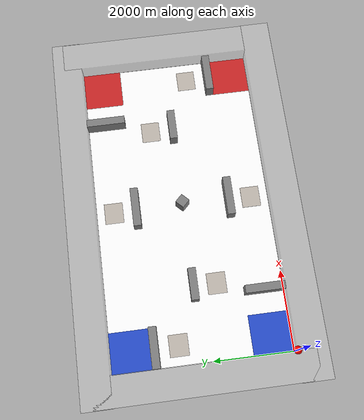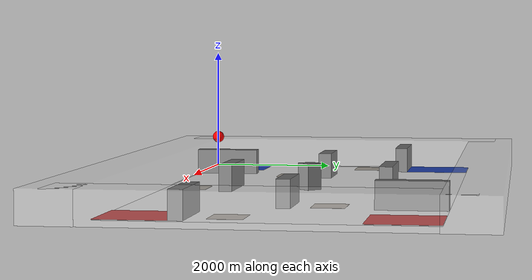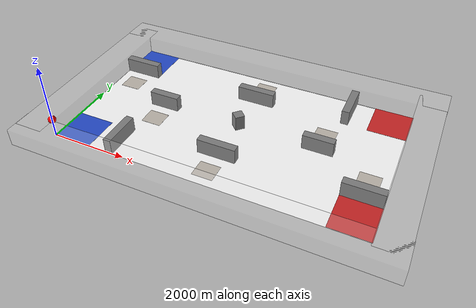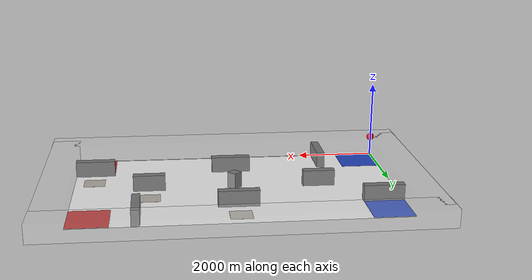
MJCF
<?xml version="1.0" encoding="utf-8"?>
<mujoco>
    <asset>
        <texture name="rm_red_marker_texture" file="rm_red_marker.png" type="2d"/>
        <texture name="rm_blue_marker_texture" file="rm_blue_marker.png" type="2d"/>
        <texture name="rm_buff_marker_texture" file="rm_buff_marker.png" type="2d"/>
        <material name="rm_red_marker" texture="rm_red_marker_texture"/>
        <material name="rm_blue_marker" texture="rm_blue_marker_texture"/>
        <material name="rm_buff_marker" texture="rm_buff_marker_texture"/>
    </asset>
	<worldbody>
            <body name="competition_area" pos="4040 2240 0">
                <geom name="floor" type="plane" rgba="1 1 1 1" size="4040 2240 100"/>

                <site name="blue_marker1" type="box" size="500 500 1" pos="-3540 -1740 0" euler="0 0 270" material="rm_blue_marker"/>
                <site name="blue_marker2" type="box" size="500 500 1" pos="-3540 1740 0" euler="0 0 270" material="rm_blue_marker"/>
                <site name="red_marker1" type="box" size="500 500 1" pos="3540 -1740 0" euler="0 0 90" material="rm_red_marker"/>
                <site name="red_marker2" type="box" size="500 500 1" pos="3540 1740 0" euler="0 0 90" material="rm_red_marker"/>

                <body name="B1" pos="-3540 1140 200">
                    <geom name="B1_geom" type="box" size="500 100 200" euler="0 0 0"/>
                    <site name="B1_site" type="box" size="500 100 200" rgba="1 1 1 0" euler="0 0 0"/>
                </body>

                <body name="B2" pos="-2140 0 200">
                    <geom name="B2_geom" type="box" size="400 100 200" euler="0 0 0"/>
                    <site name="B2_site" type="box" size="400 100 200" rgba="1 1 1 0" euler="0 0 0"/>
                </body>

                <body name="B3" pos="-2440 -1740 200">
                    <geom name="B3_geom" type="box" size="500 100 200" euler="0 0 90"/>
                    <site name="B3_site" type="box" size="500 100 200" rgba="1 1 1 0" euler="0 0 90"/>
                </body>

                <body name="B4" pos="0 1205 200">
                    <geom name="B4_geom" type="box" size="500 100 200" euler="0 0 0"/>
                    <site name="B4_site" type="box" size="500 100 200" rgba="1 1 1 0" euler="0 0 0"/>
                </body>

                <body name="B5" pos="0 0 200">
                    <geom name="B5_geom" type="box" size="125 125 200" euler="0 0 45"/>
                    <site name="B5_site" type="box" size="125 125 200" rgba="1 1 1 0" euler="0 0 45"/>
                </body>

                <body name="B6" pos="0 -1205 200">
                    <geom name="B6_geom" type="box" size="500 100 200" euler="0 0 0"/>
                    <site name="B6_site" type="box" size="500 100 200" rgba="1 1 1 0" euler="0 0 0"/>
                </body>

                <body name="B7" pos="2440 1740 200">
                    <geom name="B7_geom" type="box" size="500 100 200" euler="0 0 90"/>
                    <site name="B7_site" type="box" size="500 100 200" rgba="1 1 1 0" euler="0 0 90"/>
                </body>

                <body name="B8" pos="2140 0 200">
                    <geom name="B8_geom" type="box" size="400 100 200" euler="0 0 0"/>
                    <site name="B8_site" type="box" size="400 100 200" rgba="1 1 1 0" euler="0 0 0"/>
                </body>

                <body name="B9" pos="3540 -1140 200">
                    <geom name="B9_geom" type="box" size="500 100 200" euler="0 0 0"/>
                    <site name="B9_site" type="box" size="500 100 200" rgba="1 1 1 0" euler="0 0 0"/>
                </body>

                <site name="F1" type="box" size="270 240 1" pos="-3540 550 0" euler="0 0 0" material="rm_buff_marker"/>
                <site name="F2" type="box" size="270 240 1" pos="-2140 -590 0" euler="0 0 0" material="rm_buff_marker"/>
                <site name="F3" type="box" size="270 240 1" pos="0 1795 0" euler="0 0 0" material="rm_buff_marker"/>
                <site name="F4" type="box" size="270 240 1" pos="3540 -550 0" euler="0 0 0" material="rm_buff_marker"/>
                <site name="F5" type="box" size="270 240 1" pos="2140 590 0" euler="0 0 0" material="rm_buff_marker"/>
                <site name="F6" type="box" size="270 240 1" pos="0 -1795 0" euler="0 0 0" material="rm_buff_marker"/>
            </body>

            <site name="dest_marker1" type="sphere" size="100" pos="0 0 500" rgba="1 0 0 1"/>
            <site name="dest_marker2" type="sphere" size="100" pos="0 0 500" rgba="0 1 0 1"/>

            <body name="surrounding_walls" pos="4040 2240 0">
                <geom name="sw_geom1" type="box" size="375 2700 230" rgba="1 1 1 0.1" pos="-4415 0 230"/>
                <site name="sw_site1" type="box" size="375 2700 230" rgba="1 1 1 0" pos="-4415 0 230"/>
                <geom name="sw_geom2" type="box" size="375 2700 230" rgba="1 1 1 0.1" pos="4415 0 230"/>
                <site name="sw_site2" type="box" size="375 2700 230" rgba="1 1 1 0" pos="4415 0 230"/>
                <geom name="sw_geom3" type="box" size="4800 375 230" rgba="1 1 1 0.1" pos="0 2615 230"/>
                <site name="sw_site3" type="box" size="4800 375 230" rgba="1 1 1 0" pos="0 2615 230"/>
                <geom name="sw_geom4" type="box" size="4800 375 230" rgba="1 1 1 0.1" pos="0 -2615 230"/>
                <site name="sw_site4" type="box" size="4800 375 230" rgba="1 1 1 0" pos="0 -2615 230"/>
            </body>
	</worldbody>
    <sensor>
        <touch name="red_marker1_touch" site="red_marker1"/>
        <touch name="red_marker2_touch" site="red_marker2"/>
        <touch name="blue_marker1_touch" site="blue_marker1"/>
        <touch name="blue_marker2_touch" site="blue_marker2"/>
        <touch name="B1_site_touch" site="B1_site"/>
        <touch name="B2_site_touch" site="B2_site"/>
        <touch name="B3_site_touch" site="B3_site"/>
        <touch name="B4_site_touch" site="B4_site"/>
        <touch name="B5_site_touch" site="B5_site"/>
        <touch name="B6_site_touch" site="B6_site"/>
        <touch name="B7_site_touch" site="B7_site"/>
        <touch name="B8_site_touch" site="B8_site"/>
        <touch name="B9_site_touch" site="B9_site"/>
        <touch name="sw_site1_touch" site="sw_site1"/>
        <touch name="sw_site2_touch" site="sw_site2"/>
        <touch name="sw_site3_touch" site="sw_site3"/>
        <touch name="sw_site4_touch" site="sw_site4"/>
    </sensor>
</mujoco>
